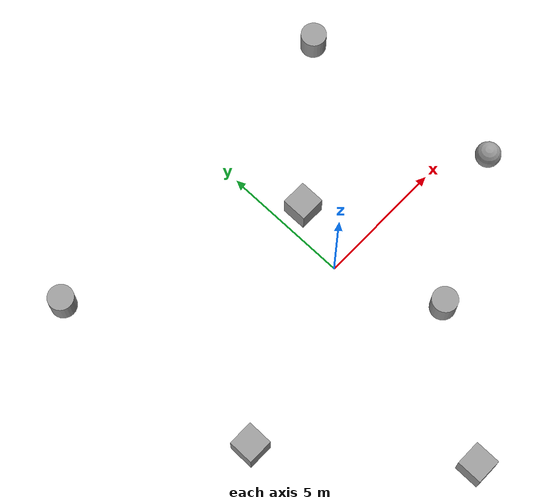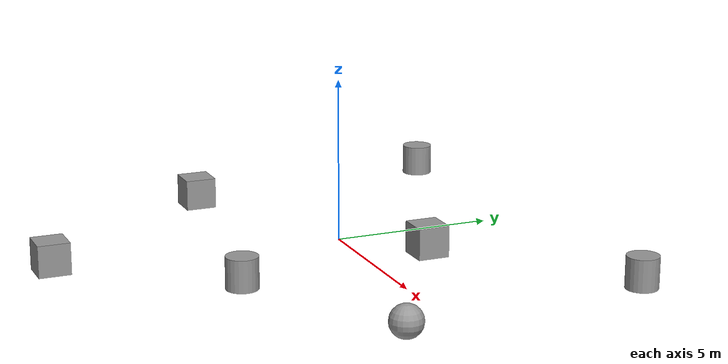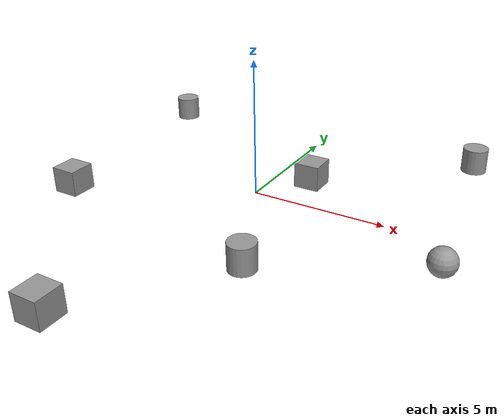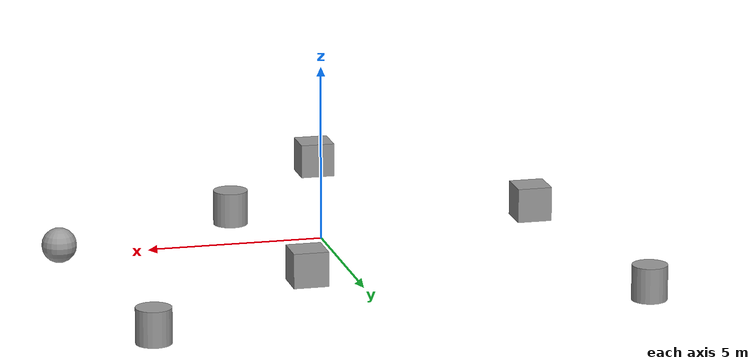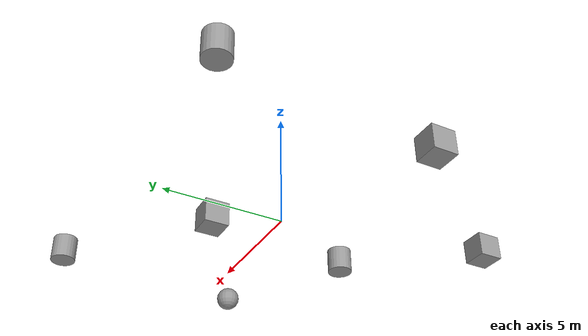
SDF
<?xml version='1.0'?>
<sdf version='1.6'>
  <model name='world1.world'>
    <link name='link_0'>
      <pose frame=''>1.01026 2.53596 0 0 -0 0</pose>
      <inertial>
        <mass>1</mass>
        <inertia>
          <ixx>0.166667</ixx>
          <ixy>0</ixy>
          <ixz>0</ixz>
          <iyy>0.166667</iyy>
          <iyz>0</iyz>
          <izz>0.166667</izz>
        </inertia>
      </inertial>
      <visual name='visual'>
        <pose frame=''>0 0 0 0 -0 0</pose>
        <geometry>
          <box>
            <size>1 1 1</size>
          </box>
        </geometry>
        <material>
          <lighting>1</lighting>
          <script>
            <uri>file://media/materials/scripts/gazebo.material</uri>
            <name>Gazebo/Grey</name>
          </script>
          <shader type='pixel'/>
          <ambient>0.3 0.3 0.3 1</ambient>
          <diffuse>0.7 0.7 0.7 1</diffuse>
          <specular>0.01 0.01 0.01 1</specular>
          <emissive>0 0 0 1</emissive>
        </material>
        <transparency>0</transparency>
        <cast_shadows>1</cast_shadows>
      </visual>
      <collision name='collision'>
        <laser_retro>0</laser_retro>
        <max_contacts>10</max_contacts>
        <pose frame=''>0 0 0 0 -0 0</pose>
        <geometry>
          <box>
            <size>1 1 1</size>
          </box>
        </geometry>
        <surface>
          <friction>
            <ode>
              <mu>1</mu>
              <mu2>1</mu2>
              <fdir1>0 0 0</fdir1>
              <slip1>0</slip1>
              <slip2>0</slip2>
            </ode>
            <torsional>
              <coefficient>1</coefficient>
              <patch_radius>0</patch_radius>
              <surface_radius>0</surface_radius>
              <use_patch_radius>1</use_patch_radius>
              <ode>
                <slip>0</slip>
              </ode>
            </torsional>
          </friction>
          <bounce>
            <restitution_coefficient>0</restitution_coefficient>
            <threshold>1e+06</threshold>
          </bounce>
          <contact>
            <collide_without_contact>0</collide_without_contact>
            <collide_without_contact_bitmask>1</collide_without_contact_bitmask>
            <collide_bitmask>1</collide_bitmask>
            <ode>
              <soft_cfm>0</soft_cfm>
              <soft_erp>0.2</soft_erp>
              <kp>1e+13</kp>
              <kd>1</kd>
              <max_vel>0.01</max_vel>
              <min_depth>0</min_depth>
            </ode>
            <bullet>
              <split_impulse>1</split_impulse>
              <split_impulse_penetration_threshold>-0.01</split_impulse_penetration_threshold>
              <soft_cfm>0</soft_cfm>
              <soft_erp>0.2</soft_erp>
              <kp>1e+13</kp>
              <kd>1</kd>
            </bullet>
          </contact>
        </surface>
      </collision>
    </link>
    <link name='link_1'>
      <pose frame=''>-6.81989 -2.34566 0 0 -0 0</pose>
      <inertial>
        <mass>1</mass>
        <inertia>
          <ixx>0.166667</ixx>
          <ixy>0</ixy>
          <ixz>0</ixz>
          <iyy>0.166667</iyy>
          <iyz>0</iyz>
          <izz>0.166667</izz>
        </inertia>
      </inertial>
      <visual name='visual'>
        <pose frame=''>0 0 0 0 -0 0</pose>
        <geometry>
          <box>
            <size>1 1 1</size>
          </box>
        </geometry>
        <material>
          <lighting>1</lighting>
          <script>
            <uri>file://media/materials/scripts/gazebo.material</uri>
            <name>Gazebo/Grey</name>
          </script>
          <shader type='pixel'/>
          <ambient>0.3 0.3 0.3 1</ambient>
          <diffuse>0.7 0.7 0.7 1</diffuse>
          <specular>0.01 0.01 0.01 1</specular>
          <emissive>0 0 0 1</emissive>
        </material>
        <transparency>0</transparency>
        <cast_shadows>1</cast_shadows>
      </visual>
      <collision name='collision'>
        <laser_retro>0</laser_retro>
        <max_contacts>10</max_contacts>
        <pose frame=''>0 0 0 0 -0 0</pose>
        <geometry>
          <box>
            <size>1 1 1</size>
          </box>
        </geometry>
        <surface>
          <friction>
            <ode>
              <mu>1</mu>
              <mu2>1</mu2>
              <fdir1>0 0 0</fdir1>
              <slip1>0</slip1>
              <slip2>0</slip2>
            </ode>
            <torsional>
              <coefficient>1</coefficient>
              <patch_radius>0</patch_radius>
              <surface_radius>0</surface_radius>
              <use_patch_radius>1</use_patch_radius>
              <ode>
                <slip>0</slip>
              </ode>
            </torsional>
          </friction>
          <bounce>
            <restitution_coefficient>0</restitution_coefficient>
            <threshold>1e+06</threshold>
          </bounce>
          <contact>
            <collide_without_contact>0</collide_without_contact>
            <collide_without_contact_bitmask>1</collide_without_contact_bitmask>
            <collide_bitmask>1</collide_bitmask>
            <ode>
              <soft_cfm>0</soft_cfm>
              <soft_erp>0.2</soft_erp>
              <kp>1e+13</kp>
              <kd>1</kd>
              <max_vel>0.01</max_vel>
              <min_depth>0</min_depth>
            </ode>
            <bullet>
              <split_impulse>1</split_impulse>
              <split_impulse_penetration_threshold>-0.01</split_impulse_penetration_threshold>
              <soft_cfm>0</soft_cfm>
              <soft_erp>0.2</soft_erp>
              <kp>1e+13</kp>
              <kd>1</kd>
            </bullet>
          </contact>
        </surface>
      </collision>
    </link>
    <link name='link_2'>
      <pose frame=''>-7.76301 6.30091 0 0 -0 0</pose>
      <inertial>
        <mass>1</mass>
        <inertia>
          <ixx>0.145833</ixx>
          <ixy>0</ixy>
          <ixz>0</ixz>
          <iyy>0.145833</iyy>
          <iyz>0</iyz>
          <izz>0.125</izz>
        </inertia>
      </inertial>
      <visual name='visual'>
        <pose frame=''>0 0 0 0 -0 0</pose>
        <geometry>
          <cylinder>
            <radius>0.5</radius>
            <length>1</length>
          </cylinder>
        </geometry>
        <material>
          <lighting>1</lighting>
          <script>
            <uri>file://media/materials/scripts/gazebo.material</uri>
            <name>Gazebo/Grey</name>
          </script>
          <shader type='pixel'/>
          <ambient>0.3 0.3 0.3 1</ambient>
          <diffuse>0.7 0.7 0.7 1</diffuse>
          <specular>0.01 0.01 0.01 1</specular>
          <emissive>0 0 0 1</emissive>
        </material>
        <transparency>0</transparency>
        <cast_shadows>1</cast_shadows>
      </visual>
      <collision name='collision'>
        <laser_retro>0</laser_retro>
        <max_contacts>10</max_contacts>
        <pose frame=''>0 0 0 0 -0 0</pose>
        <geometry>
          <cylinder>
            <radius>0.5</radius>
            <length>1</length>
          </cylinder>
        </geometry>
        <surface>
          <friction>
            <ode>
              <mu>1</mu>
              <mu2>1</mu2>
              <fdir1>0 0 0</fdir1>
              <slip1>0</slip1>
              <slip2>0</slip2>
            </ode>
            <torsional>
              <coefficient>1</coefficient>
              <patch_radius>0</patch_radius>
              <surface_radius>0</surface_radius>
              <use_patch_radius>1</use_patch_radius>
              <ode>
                <slip>0</slip>
              </ode>
            </torsional>
          </friction>
          <bounce>
            <restitution_coefficient>0</restitution_coefficient>
            <threshold>1e+06</threshold>
          </bounce>
          <contact>
            <collide_without_contact>0</collide_without_contact>
            <collide_without_contact_bitmask>1</collide_without_contact_bitmask>
            <collide_bitmask>1</collide_bitmask>
            <ode>
              <soft_cfm>0</soft_cfm>
              <soft_erp>0.2</soft_erp>
              <kp>1e+13</kp>
              <kd>1</kd>
              <max_vel>0.01</max_vel>
              <min_depth>0</min_depth>
            </ode>
            <bullet>
              <split_impulse>1</split_impulse>
              <split_impulse_penetration_threshold>-0.01</split_impulse_penetration_threshold>
              <soft_cfm>0</soft_cfm>
              <soft_erp>0.2</soft_erp>
              <kp>1e+13</kp>
              <kd>1</kd>
            </bullet>
          </contact>
        </surface>
      </collision>
    </link>
    <link name='link_3'>
      <pose frame=''>1.79856 -3.78843 0 0 -0 0</pose>
      <inertial>
        <mass>1</mass>
        <inertia>
          <ixx>0.145833</ixx>
          <ixy>0</ixy>
          <ixz>0</ixz>
          <iyy>0.145833</iyy>
          <iyz>0</iyz>
          <izz>0.125</izz>
        </inertia>
      </inertial>
      <visual name='visual'>
        <pose frame=''>0 0 0 0 -0 0</pose>
        <geometry>
          <cylinder>
            <radius>0.5</radius>
            <length>1</length>
          </cylinder>
        </geometry>
        <material>
          <lighting>1</lighting>
          <script>
            <uri>file://media/materials/scripts/gazebo.material</uri>
            <name>Gazebo/Grey</name>
          </script>
          <shader type='pixel'/>
          <ambient>0.3 0.3 0.3 1</ambient>
          <diffuse>0.7 0.7 0.7 1</diffuse>
          <specular>0.01 0.01 0.01 1</specular>
          <emissive>0 0 0 1</emissive>
        </material>
        <transparency>0</transparency>
        <cast_shadows>1</cast_shadows>
      </visual>
      <collision name='collision'>
        <laser_retro>0</laser_retro>
        <max_contacts>10</max_contacts>
        <pose frame=''>0 0 0 0 -0 0</pose>
        <geometry>
          <cylinder>
            <radius>0.5</radius>
            <length>1</length>
          </cylinder>
        </geometry>
        <surface>
          <friction>
            <ode>
              <mu>1</mu>
              <mu2>1</mu2>
              <fdir1>0 0 0</fdir1>
              <slip1>0</slip1>
              <slip2>0</slip2>
            </ode>
            <torsional>
              <coefficient>1</coefficient>
              <patch_radius>0</patch_radius>
              <surface_radius>0</surface_radius>
              <use_patch_radius>1</use_patch_radius>
              <ode>
                <slip>0</slip>
              </ode>
            </torsional>
          </friction>
          <bounce>
            <restitution_coefficient>0</restitution_coefficient>
            <threshold>1e+06</threshold>
          </bounce>
          <contact>
            <collide_without_contact>0</collide_without_contact>
            <collide_without_contact_bitmask>1</collide_without_contact_bitmask>
            <collide_bitmask>1</collide_bitmask>
            <ode>
              <soft_cfm>0</soft_cfm>
              <soft_erp>0.2</soft_erp>
              <kp>1e+13</kp>
              <kd>1</kd>
              <max_vel>0.01</max_vel>
              <min_depth>0</min_depth>
            </ode>
            <bullet>
              <split_impulse>1</split_impulse>
              <split_impulse_penetration_threshold>-0.01</split_impulse_penetration_threshold>
              <soft_cfm>0</soft_cfm>
              <soft_erp>0.2</soft_erp>
              <kp>1e+13</kp>
              <kd>1</kd>
            </bullet>
          </contact>
        </surface>
      </collision>
    </link>
    <link name='link_4'>
      <pose frame=''>-1.82638 -8.5615 0 0 -0 0</pose>
      <inertial>
        <mass>1</mass>
        <inertia>
          <ixx>0.166667</ixx>
          <ixy>0</ixy>
          <ixz>0</ixz>
          <iyy>0.166667</iyy>
          <iyz>0</iyz>
          <izz>0.166667</izz>
        </inertia>
      </inertial>
      <visual name='visual'>
        <pose frame=''>0 0 0 0 -0 0</pose>
        <geometry>
          <box>
            <size>1 1 1</size>
          </box>
        </geometry>
        <material>
          <lighting>1</lighting>
          <script>
            <uri>file://media/materials/scripts/gazebo.material</uri>
            <name>Gazebo/Grey</name>
          </script>
          <shader type='pixel'/>
          <ambient>0.3 0.3 0.3 1</ambient>
          <diffuse>0.7 0.7 0.7 1</diffuse>
          <specular>0.01 0.01 0.01 1</specular>
          <emissive>0 0 0 1</emissive>
        </material>
        <transparency>0</transparency>
        <cast_shadows>1</cast_shadows>
      </visual>
      <collision name='collision'>
        <laser_retro>0</laser_retro>
        <max_contacts>10</max_contacts>
        <pose frame=''>0 0 0 0 -0 0</pose>
        <geometry>
          <box>
            <size>1 1 1</size>
          </box>
        </geometry>
        <surface>
          <friction>
            <ode>
              <mu>1</mu>
              <mu2>1</mu2>
              <fdir1>0 0 0</fdir1>
              <slip1>0</slip1>
              <slip2>0</slip2>
            </ode>
            <torsional>
              <coefficient>1</coefficient>
              <patch_radius>0</patch_radius>
              <surface_radius>0</surface_radius>
              <use_patch_radius>1</use_patch_radius>
              <ode>
                <slip>0</slip>
              </ode>
            </torsional>
          </friction>
          <bounce>
            <restitution_coefficient>0</restitution_coefficient>
            <threshold>1e+06</threshold>
          </bounce>
          <contact>
            <collide_without_contact>0</collide_without_contact>
            <collide_without_contact_bitmask>1</collide_without_contact_bitmask>
            <collide_bitmask>1</collide_bitmask>
            <ode>
              <soft_cfm>0</soft_cfm>
              <soft_erp>0.2</soft_erp>
              <kp>1e+13</kp>
              <kd>1</kd>
              <max_vel>0.01</max_vel>
              <min_depth>0</min_depth>
            </ode>
            <bullet>
              <split_impulse>1</split_impulse>
              <split_impulse_penetration_threshold>-0.01</split_impulse_penetration_threshold>
              <soft_cfm>0</soft_cfm>
              <soft_erp>0.2</soft_erp>
              <kp>1e+13</kp>
              <kd>1</kd>
            </bullet>
          </contact>
        </surface>
      </collision>
    </link>
    <link name='link_5'>
      <pose frame=''>7.3366 -1.09515 0 0 -0 0</pose>
      <inertial>
        <mass>1</mass>
        <inertia>
          <ixx>0.1</ixx>
          <ixy>0</ixy>
          <ixz>0</ixz>
          <iyy>0.1</iyy>
          <iyz>0</iyz>
          <izz>0.1</izz>
        </inertia>
      </inertial>
      <visual name='visual'>
        <pose frame=''>0 0 0 0 -0 0</pose>
        <geometry>
          <sphere>
            <radius>0.5</radius>
          </sphere>
        </geometry>
        <material>
          <lighting>1</lighting>
          <script>
            <uri>file://media/materials/scripts/gazebo.material</uri>
            <name>Gazebo/Grey</name>
          </script>
          <shader type='pixel'/>
          <ambient>0.3 0.3 0.3 1</ambient>
          <diffuse>0.7 0.7 0.7 1</diffuse>
          <specular>0.01 0.01 0.01 1</specular>
          <emissive>0 0 0 1</emissive>
        </material>
        <transparency>0</transparency>
        <cast_shadows>1</cast_shadows>
      </visual>
      <collision name='collision'>
        <laser_retro>0</laser_retro>
        <max_contacts>10</max_contacts>
        <pose frame=''>0 0 0 0 -0 0</pose>
        <geometry>
          <sphere>
            <radius>0.5</radius>
          </sphere>
        </geometry>
        <surface>
          <friction>
            <ode>
              <mu>1</mu>
              <mu2>1</mu2>
              <fdir1>0 0 0</fdir1>
              <slip1>0</slip1>
              <slip2>0</slip2>
            </ode>
            <torsional>
              <coefficient>1</coefficient>
              <patch_radius>0</patch_radius>
              <surface_radius>0</surface_radius>
              <use_patch_radius>1</use_patch_radius>
              <ode>
                <slip>0</slip>
              </ode>
            </torsional>
          </friction>
          <bounce>
            <restitution_coefficient>0</restitution_coefficient>
            <threshold>1e+06</threshold>
          </bounce>
          <contact>
            <collide_without_contact>0</collide_without_contact>
            <collide_without_contact_bitmask>1</collide_without_contact_bitmask>
            <collide_bitmask>1</collide_bitmask>
            <ode>
              <soft_cfm>0</soft_cfm>
              <soft_erp>0.2</soft_erp>
              <kp>1e+13</kp>
              <kd>1</kd>
              <max_vel>0.01</max_vel>
              <min_depth>0</min_depth>
            </ode>
            <bullet>
              <split_impulse>1</split_impulse>
              <split_impulse_penetration_threshold>-0.01</split_impulse_penetration_threshold>
              <soft_cfm>0</soft_cfm>
              <soft_erp>0.2</soft_erp>
              <kp>1e+13</kp>
              <kd>1</kd>
            </bullet>
          </contact>
        </surface>
      </collision>
    </link>
    <link name='link_6'>
      <pose frame=''>6.26385 6.95389 0 0 -0 0</pose>
      <inertial>
        <mass>1</mass>
        <inertia>
          <ixx>0.145833</ixx>
          <ixy>0</ixy>
          <ixz>0</ixz>
          <iyy>0.145833</iyy>
          <iyz>0</iyz>
          <izz>0.125</izz>
        </inertia>
      </inertial>
      <visual name='visual'>
        <pose frame=''>0 0 0 0 -0 0</pose>
        <geometry>
          <cylinder>
            <radius>0.5</radius>
            <length>1</length>
          </cylinder>
        </geometry>
        <material>
          <lighting>1</lighting>
          <script>
            <uri>file://media/materials/scripts/gazebo.material</uri>
            <name>Gazebo/Grey</name>
          </script>
          <shader type='pixel'/>
          <ambient>0.3 0.3 0.3 1</ambient>
          <diffuse>0.7 0.7 0.7 1</diffuse>
          <specular>0.01 0.01 0.01 1</specular>
          <emissive>0 0 0 1</emissive>
        </material>
        <transparency>0</transparency>
        <cast_shadows>1</cast_shadows>
      </visual>
      <collision name='collision'>
        <laser_retro>0</laser_retro>
        <max_contacts>10</max_contacts>
        <pose frame=''>0 0 0 0 -0 0</pose>
        <geometry>
          <cylinder>
            <radius>0.5</radius>
            <length>1</length>
          </cylinder>
        </geometry>
        <surface>
          <friction>
            <ode>
              <mu>1</mu>
              <mu2>1</mu2>
              <fdir1>0 0 0</fdir1>
              <slip1>0</slip1>
              <slip2>0</slip2>
            </ode>
            <torsional>
              <coefficient>1</coefficient>
              <patch_radius>0</patch_radius>
              <surface_radius>0</surface_radius>
              <use_patch_radius>1</use_patch_radius>
              <ode>
                <slip>0</slip>
              </ode>
            </torsional>
          </friction>
          <bounce>
            <restitution_coefficient>0</restitution_coefficient>
            <threshold>1e+06</threshold>
          </bounce>
          <contact>
            <collide_without_contact>0</collide_without_contact>
            <collide_without_contact_bitmask>1</collide_without_contact_bitmask>
            <collide_bitmask>1</collide_bitmask>
            <ode>
              <soft_cfm>0</soft_cfm>
              <soft_erp>0.2</soft_erp>
              <kp>1e+13</kp>
              <kd>1</kd>
              <max_vel>0.01</max_vel>
              <min_depth>0</min_depth>
            </ode>
            <bullet>
              <split_impulse>1</split_impulse>
              <split_impulse_penetration_threshold>-0.01</split_impulse_penetration_threshold>
              <soft_cfm>0</soft_cfm>
              <soft_erp>0.2</soft_erp>
              <kp>1e+13</kp>
              <kd>1</kd>
            </bullet>
          </contact>
        </surface>
      </collision>
    </link>
    <static>0</static>
    <allow_auto_disable>1</allow_auto_disable>
  </model>
</sdf>
